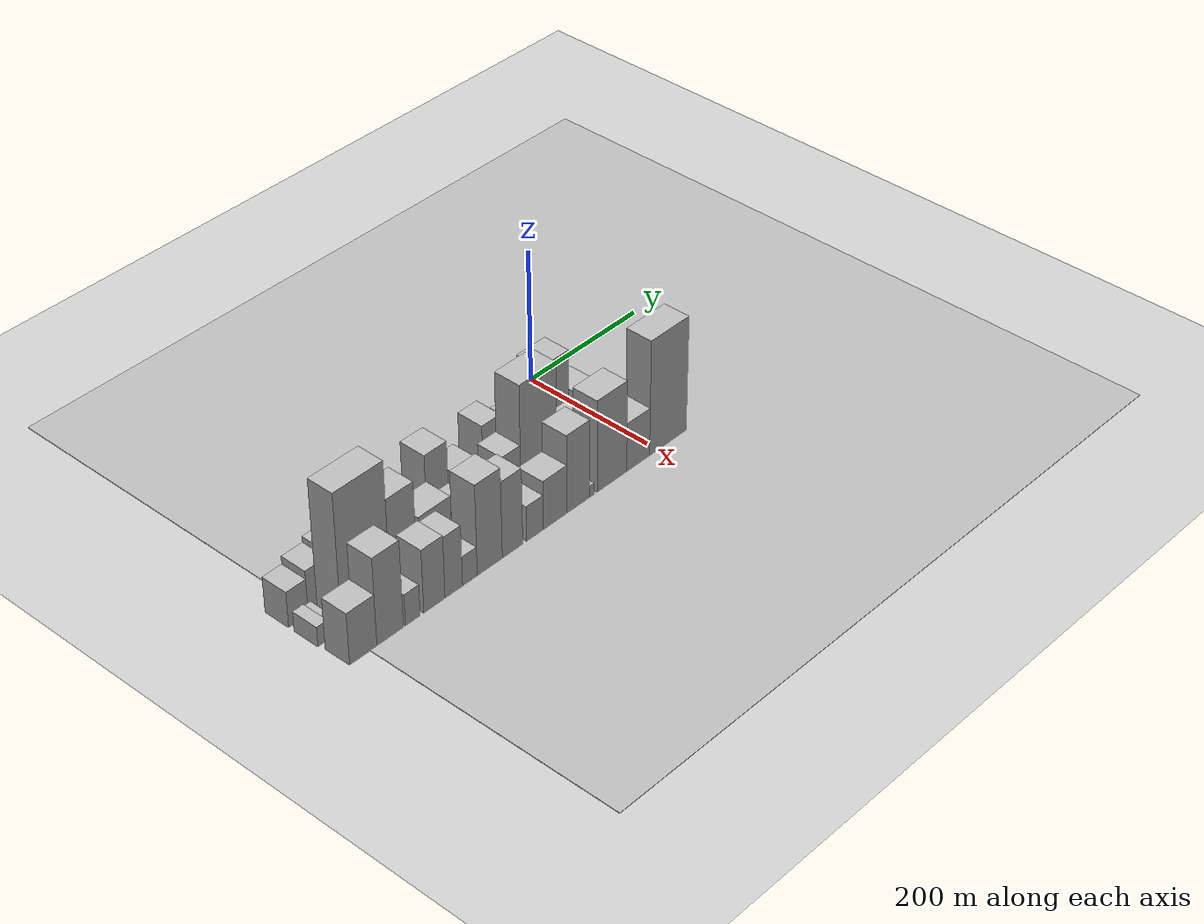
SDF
<sdf version="1.6">
 <world name="default">
  <include><name>ground_plane_1</name><uri>model://HANNAS_ground_plane</uri></include>
  <include>
   <name>ground_plane_2</name>
   <uri>model://HANNAS_ground_plane</uri>
   <pose>100 0 0  0 0 0</pose>
  </include>
  <model name="building_1">
   <static>1</static>
   <pose>100.0000 -520.5226 0 0.000000 0.000000 0.000000</pose>
   <link name="link">
    <pose>0 0 27.00 0 0 0</pose>
    <collision name="collision"><geometry><box><size>40.0000 30.9549 54.0000</size></box></geometry></collision>
    <visual name="visual">
     <cast_shadows>0</cast_shadows>
     <geometry><box><size>40.0000 30.9549 54.0000</size></box></geometry>
     <material>
      <script>
       <uri>model://HANNAS_wall/materials/scripts</uri>
       <uri>model://HANNAS_wall/materials/textures</uri>
       <name>vrc/HANNAS_wall</name>
      </script>
     </material>
    </visual>
   </link>
  </model>
  <model name="building_2">
   <static>1</static>
   <pose>100.0000 -488.2523 0 0.000000 0.000000 0.000000</pose>
   <link name="link">
    <pose>0 0 33.00 0 0 0</pose>
    <collision name="collision"><geometry><box><size>40.0000 33.5855 66.0000</size></box></geometry></collision>
    <visual name="visual">
     <cast_shadows>0</cast_shadows>
     <geometry><box><size>40.0000 33.5855 66.0000</size></box></geometry>
     <material>
      <script>
       <uri>model://HANNAS_wall/materials/scripts</uri>
       <uri>model://HANNAS_wall/materials/textures</uri>
       <name>vrc/HANNAS_wall</name>
      </script>
     </material>
    </visual>
   </link>
  </model>
  <model name="building_3">
   <static>1</static>
   <pose>100.0000 -452.0912 0 0.000000 0.000000 0.000000</pose>
   <link name="link">
    <pose>0 0 37.50 0 0 0</pose>
    <collision name="collision"><geometry><box><size>40.0000 38.7367 75.0000</size></box></geometry></collision>
    <visual name="visual">
     <cast_shadows>0</cast_shadows>
     <geometry><box><size>40.0000 38.7367 75.0000</size></box></geometry>
     <material>
      <script>
       <uri>model://HANNAS_wall/materials/scripts</uri>
       <uri>model://HANNAS_wall/materials/textures</uri>
       <name>vrc/HANNAS_wall</name>
      </script>
     </material>
    </visual>
   </link>
  </model>
  <model name="building_4">
   <static>1</static>
   <pose>100.0000 -427.2255 0 0.000000 0.000000 0.000000</pose>
   <link name="link">
    <pose>0 0 13.50 0 0 0</pose>
    <collision name="collision"><geometry><box><size>40.0000 10.9949 27.0000</size></box></geometry></collision>
    <visual name="visual">
     <cast_shadows>0</cast_shadows>
     <geometry><box><size>40.0000 10.9949 27.0000</size></box></geometry>
     <material>
      <script>
       <uri>model://HANNAS_wall/materials/scripts</uri>
       <uri>model://HANNAS_wall/materials/textures</uri>
       <name>vrc/HANNAS_wall</name>
      </script>
     </material>
    </visual>
   </link>
  </model>
  <model name="building_5">
   <static>1</static>
   <pose>100.0000 -400.7128 0 0.000000 0.000000 0.000000</pose>
   <link name="link">
    <pose>0 0 46.50 0 0 0</pose>
    <collision name="collision"><geometry><box><size>40.0000 30.0306 93.0000</size></box></geometry></collision>
    <visual name="visual">
     <cast_shadows>0</cast_shadows>
     <geometry><box><size>40.0000 30.0306 93.0000</size></box></geometry>
     <material>
      <script>
       <uri>model://HANNAS_wall/materials/scripts</uri>
       <uri>model://HANNAS_wall/materials/textures</uri>
       <name>vrc/HANNAS_wall</name>
      </script>
     </material>
    </visual>
   </link>
  </model>
  <model name="building_6">
   <static>1</static>
   <pose>100.0000 -370.0675 0 0.000000 0.000000 0.000000</pose>
   <link name="link">
    <pose>0 0 30.00 0 0 0</pose>
    <collision name="collision"><geometry><box><size>40.0000 31.2598 60.0000</size></box></geometry></collision>
    <visual name="visual">
     <cast_shadows>0</cast_shadows>
     <geometry><box><size>40.0000 31.2598 60.0000</size></box></geometry>
     <material>
      <script>
       <uri>model://HANNAS_wall/materials/scripts</uri>
       <uri>model://HANNAS_wall/materials/textures</uri>
       <name>vrc/HANNAS_wall</name>
      </script>
     </material>
    </visual>
   </link>
  </model>
  <model name="building_7">
   <static>1</static>
   <pose>100.0000 -340.5071 0 0.000000 0.000000 0.000000</pose>
   <link name="link">
    <pose>0 0 27.00 0 0 0</pose>
    <collision name="collision"><geometry><box><size>40.0000 27.8611 54.0000</size></box></geometry></collision>
    <visual name="visual">
     <cast_shadows>0</cast_shadows>
     <geometry><box><size>40.0000 27.8611 54.0000</size></box></geometry>
     <material>
      <script>
       <uri>model://HANNAS_wall/materials/scripts</uri>
       <uri>model://HANNAS_wall/materials/textures</uri>
       <name>vrc/HANNAS_wall</name>
      </script>
     </material>
    </visual>
   </link>
  </model>
  <model name="building_8">
   <static>1</static>
   <pose>100.0000 -321.2389 0 0.000000 0.000000 0.000000</pose>
   <link name="link">
    <pose>0 0 12.00 0 0 0</pose>
    <collision name="collision"><geometry><box><size>40.0000 10.6752 24.0000</size></box></geometry></collision>
    <visual name="visual">
     <cast_shadows>0</cast_shadows>
     <geometry><box><size>40.0000 10.6752 24.0000</size></box></geometry>
     <material>
      <script>
       <uri>model://HANNAS_wall/materials/scripts</uri>
       <uri>model://HANNAS_wall/materials/textures</uri>
       <name>vrc/HANNAS_wall</name>
      </script>
     </material>
    </visual>
   </link>
  </model>
  <model name="building_9">
   <static>1</static>
   <pose>100.0000 -312.6179 0 0.000000 0.000000 0.000000</pose>
   <link name="link">
    <pose>0 0 7.50 0 0 0</pose>
    <collision name="collision"><geometry><box><size>40.0000 6.5669 15.0000</size></box></geometry></collision>
    <visual name="visual">
     <cast_shadows>0</cast_shadows>
     <geometry><box><size>40.0000 6.5669 15.0000</size></box></geometry>
     <material>
      <script>
       <uri>model://HANNAS_wall/materials/scripts</uri>
       <uri>model://HANNAS_wall/materials/textures</uri>
       <name>vrc/HANNAS_wall</name>
      </script>
     </material>
    </visual>
   </link>
  </model>
  <model name="building_10">
   <static>1</static>
   <pose>100.0000 -290.5077 0 0.000000 0.000000 0.000000</pose>
   <link name="link">
    <pose>0 0 60.00 0 0 0</pose>
    <collision name="collision"><geometry><box><size>40.0000 37.6535 120.0000</size></box></geometry></collision>
    <visual name="visual">
     <cast_shadows>0</cast_shadows>
     <geometry><box><size>40.0000 37.6535 120.0000</size></box></geometry>
     <material>
      <script>
       <uri>model://HANNAS_wall/materials/scripts</uri>
       <uri>model://HANNAS_wall/materials/textures</uri>
       <name>vrc/HANNAS_wall</name>
      </script>
     </material>
    </visual>
   </link>
  </model>
  <model name="building_11">
   <static>1</static>
   <pose>100.0000 -241.9130 0 0.000000 0.000000 0.000000</pose>
   <link name="link">
    <pose>0 0 33.00 0 0 0</pose>
    <collision name="collision"><geometry><box><size>40.0000 39.5359 66.0000</size></box></geometry></collision>
    <visual name="visual">
     <cast_shadows>0</cast_shadows>
     <geometry><box><size>40.0000 39.5359 66.0000</size></box></geometry>
     <material>
      <script>
       <uri>model://HANNAS_wall/materials/scripts</uri>
       <uri>model://HANNAS_wall/materials/textures</uri>
       <name>vrc/HANNAS_wall</name>
      </script>
     </material>
    </visual>
   </link>
  </model>
  <model name="building_12">
   <static>1</static>
   <pose>100.0000 -195.8661 0 0.000000 0.000000 0.000000</pose>
   <link name="link">
    <pose>0 0 54.00 0 0 0</pose>
    <collision name="collision"><geometry><box><size>40.0000 32.5578 108.0000</size></box></geometry></collision>
    <visual name="visual">
     <cast_shadows>0</cast_shadows>
     <geometry><box><size>40.0000 32.5578 108.0000</size></box></geometry>
     <material>
      <script>
       <uri>model://HANNAS_wall/materials/scripts</uri>
       <uri>model://HANNAS_wall/materials/textures</uri>
       <name>vrc/HANNAS_wall</name>
      </script>
     </material>
    </visual>
   </link>
  </model>
  <model name="building_13">
   <static>1</static>
   <pose>100.0000 -170.6438 0 0.000000 0.000000 0.000000</pose>
   <link name="link">
    <pose>0 0 16.50 0 0 0</pose>
    <collision name="collision"><geometry><box><size>40.0000 17.8870 33.0000</size></box></geometry></collision>
    <visual name="visual">
     <cast_shadows>0</cast_shadows>
     <geometry><box><size>40.0000 17.8870 33.0000</size></box></geometry>
     <material>
      <script>
       <uri>model://HANNAS_wall/materials/scripts</uri>
       <uri>model://HANNAS_wall/materials/textures</uri>
       <name>vrc/HANNAS_wall</name>
      </script>
     </material>
    </visual>
   </link>
  </model>
  <model name="building_14">
   <static>1</static>
   <pose>100.0000 -132.5002 0 0.000000 0.000000 0.000000</pose>
   <link name="link">
    <pose>0 0 42.00 0 0 0</pose>
    <collision name="collision"><geometry><box><size>40.0000 48.4001 84.0000</size></box></geometry></collision>
    <visual name="visual">
     <cast_shadows>0</cast_shadows>
     <geometry><box><size>40.0000 48.4001 84.0000</size></box></geometry>
     <material>
      <script>
       <uri>model://HANNAS_wall/materials/scripts</uri>
       <uri>model://HANNAS_wall/materials/textures</uri>
       <name>vrc/HANNAS_wall</name>
      </script>
     </material>
    </visual>
   </link>
  </model>
  <model name="building_15">
   <static>1</static>
   <pose>100.0000 -83.1058 0 0.000000 0.000000 0.000000</pose>
   <link name="link">
    <pose>0 0 69.00 0 0 0</pose>
    <collision name="collision"><geometry><box><size>40.0000 50.3887 138.0000</size></box></geometry></collision>
    <visual name="visual">
     <cast_shadows>0</cast_shadows>
     <geometry><box><size>40.0000 50.3887 138.0000</size></box></geometry>
     <material>
      <script>
       <uri>model://HANNAS_wall/materials/scripts</uri>
       <uri>model://HANNAS_wall/materials/textures</uri>
       <name>vrc/HANNAS_wall</name>
      </script>
     </material>
    </visual>
   </link>
  </model>
  <model name="building_16">
   <static>1</static>
   <pose>100.0000 -30.5629 0 0.000000 0.000000 0.000000</pose>
   <link name="link">
    <pose>0 0 34.50 0 0 0</pose>
    <collision name="collision"><geometry><box><size>40.0000 36.6970 69.0000</size></box></geometry></collision>
    <visual name="visual">
     <cast_shadows>0</cast_shadows>
     <geometry><box><size>40.0000 36.6970 69.0000</size></box></geometry>
     <material>
      <script>
       <uri>model://HANNAS_wall/materials/scripts</uri>
       <uri>model://HANNAS_wall/materials/textures</uri>
       <name>vrc/HANNAS_wall</name>
      </script>
     </material>
    </visual>
   </link>
  </model>
  <model name="building_17">
   <static>1</static>
   <pose>100.0000 1.1108 0 0.000000 0.000000 0.000000</pose>
   <link name="link">
    <pose>0 0 7.50 0 0 0</pose>
    <collision name="collision"><geometry><box><size>40.0000 6.6503 15.0000</size></box></geometry></collision>
    <visual name="visual">
     <cast_shadows>0</cast_shadows>
     <geometry><box><size>40.0000 6.6503 15.0000</size></box></geometry>
     <material>
      <script>
       <uri>model://HANNAS_wall/materials/scripts</uri>
       <uri>model://HANNAS_wall/materials/textures</uri>
       <name>vrc/HANNAS_wall</name>
      </script>
     </material>
    </visual>
   </link>
  </model>
  <model name="building_33">
   <static>1</static>
   <pose>149.0000 -527.3636 0 0.000000 0.000000 0.000000</pose>
   <link name="link">
    <pose>0 0 15.00 0 0 0</pose>
    <collision name="collision"><geometry><box><size>40.0000 17.2728 30.0000</size></box></geometry></collision>
    <visual name="visual">
     <cast_shadows>0</cast_shadows>
     <geometry><box><size>40.0000 17.2728 30.0000</size></box></geometry>
     <material>
      <script>
       <uri>model://HANNAS_wall/materials/scripts</uri>
       <uri>model://HANNAS_wall/materials/textures</uri>
       <name>vrc/HANNAS_wall</name>
      </script>
     </material>
    </visual>
   </link>
  </model>
  <model name="building_34">
   <static>1</static>
   <pose>149.0000 -513.0328 0 0.000000 0.000000 0.000000</pose>
   <link name="link">
    <pose>0 0 13.50 0 0 0</pose>
    <collision name="collision"><geometry><box><size>40.0000 11.3889 27.0000</size></box></geometry></collision>
    <visual name="visual">
     <cast_shadows>0</cast_shadows>
     <geometry><box><size>40.0000 11.3889 27.0000</size></box></geometry>
     <material>
      <script>
       <uri>model://HANNAS_wall/materials/scripts</uri>
       <uri>model://HANNAS_wall/materials/textures</uri>
       <name>vrc/HANNAS_wall</name>
      </script>
     </material>
    </visual>
   </link>
  </model>
  <model name="building_35">
   <static>1</static>
   <pose>149.0000 -458.8959 0 0.000000 0.000000 0.000000</pose>
   <link name="link">
    <pose>0 0 102.00 0 0 0</pose>
    <collision name="collision"><geometry><box><size>40.0000 78.8850 204.0000</size></box></geometry></collision>
    <visual name="visual">
     <cast_shadows>0</cast_shadows>
     <geometry><box><size>40.0000 78.8850 204.0000</size></box></geometry>
     <material>
      <script>
       <uri>model://HANNAS_wall/materials/scripts</uri>
       <uri>model://HANNAS_wall/materials/textures</uri>
       <name>vrc/HANNAS_wall</name>
      </script>
     </material>
    </visual>
   </link>
  </model>
  <model name="building_36">
   <static>1</static>
   <pose>149.0000 -397.2426 0 0.000000 0.000000 0.000000</pose>
   <link name="link">
    <pose>0 0 73.50 0 0 0</pose>
    <collision name="collision"><geometry><box><size>40.0000 44.4216 147.0000</size></box></geometry></collision>
    <visual name="visual">
     <cast_shadows>0</cast_shadows>
     <geometry><box><size>40.0000 44.4216 147.0000</size></box></geometry>
     <material>
      <script>
       <uri>model://HANNAS_wall/materials/scripts</uri>
       <uri>model://HANNAS_wall/materials/textures</uri>
       <name>vrc/HANNAS_wall</name>
      </script>
     </material>
    </visual>
   </link>
  </model>
  <model name="building_37">
   <static>1</static>
   <pose>149.0000 -343.1438 0 0.000000 0.000000 0.000000</pose>
   <link name="link">
    <pose>0 0 45.00 0 0 0</pose>
    <collision name="collision"><geometry><box><size>40.0000 53.7761 90.0000</size></box></geometry></collision>
    <visual name="visual">
     <cast_shadows>0</cast_shadows>
     <geometry><box><size>40.0000 53.7761 90.0000</size></box></geometry>
     <material>
      <script>
       <uri>model://HANNAS_wall/materials/scripts</uri>
       <uri>model://HANNAS_wall/materials/textures</uri>
       <name>vrc/HANNAS_wall</name>
      </script>
     </material>
    </visual>
   </link>
  </model>
  <model name="building_38">
   <static>1</static>
   <pose>149.0000 -297.8388 0 0.000000 0.000000 0.000000</pose>
   <link name="link">
    <pose>0 0 33.00 0 0 0</pose>
    <collision name="collision"><geometry><box><size>40.0000 36.8337 66.0000</size></box></geometry></collision>
    <visual name="visual">
     <cast_shadows>0</cast_shadows>
     <geometry><box><size>40.0000 36.8337 66.0000</size></box></geometry>
     <material>
      <script>
       <uri>model://HANNAS_wall/materials/scripts</uri>
       <uri>model://HANNAS_wall/materials/textures</uri>
       <name>vrc/HANNAS_wall</name>
      </script>
     </material>
    </visual>
   </link>
  </model>
  <model name="building_39">
   <static>1</static>
   <pose>149.0000 -249.7670 0 0.000000 0.000000 0.000000</pose>
   <link name="link">
    <pose>0 0 34.50 0 0 0</pose>
    <collision name="collision"><geometry><box><size>40.0000 41.3099 69.0000</size></box></geometry></collision>
    <visual name="visual">
     <cast_shadows>0</cast_shadows>
     <geometry><box><size>40.0000 41.3099 69.0000</size></box></geometry>
     <material>
      <script>
       <uri>model://HANNAS_wall/materials/scripts</uri>
       <uri>model://HANNAS_wall/materials/textures</uri>
       <name>vrc/HANNAS_wall</name>
      </script>
     </material>
    </visual>
   </link>
  </model>
  <model name="building_40">
   <static>1</static>
   <pose>149.0000 -213.1885 0 0.000000 0.000000 0.000000</pose>
   <link name="link">
    <pose>0 0 48.00 0 0 0</pose>
    <collision name="collision"><geometry><box><size>40.0000 31.8470 96.0000</size></box></geometry></collision>
    <visual name="visual">
     <cast_shadows>0</cast_shadows>
     <geometry><box><size>40.0000 31.8470 96.0000</size></box></geometry>
     <material>
      <script>
       <uri>model://HANNAS_wall/materials/scripts</uri>
       <uri>model://HANNAS_wall/materials/textures</uri>
       <name>vrc/HANNAS_wall</name>
      </script>
     </material>
    </visual>
   </link>
  </model>
  <model name="building_41">
   <static>1</static>
   <pose>149.0000 -165.3046 0 0.000000 0.000000 0.000000</pose>
   <link name="link">
    <pose>0 0 93.00 0 0 0</pose>
    <collision name="collision"><geometry><box><size>40.0000 63.9208 186.0000</size></box></geometry></collision>
    <visual name="visual">
     <cast_shadows>0</cast_shadows>
     <geometry><box><size>40.0000 63.9208 186.0000</size></box></geometry>
     <material>
      <script>
       <uri>model://HANNAS_wall/materials/scripts</uri>
       <uri>model://HANNAS_wall/materials/textures</uri>
       <name>vrc/HANNAS_wall</name>
      </script>
     </material>
    </visual>
   </link>
  </model>
  <model name="building_42">
   <static>1</static>
   <pose>149.0000 -116.6130 0 0.000000 0.000000 0.000000</pose>
   <link name="link">
    <pose>0 0 30.00 0 0 0</pose>
    <collision name="collision"><geometry><box><size>40.0000 33.4624 60.0000</size></box></geometry></collision>
    <visual name="visual">
     <cast_shadows>0</cast_shadows>
     <geometry><box><size>40.0000 33.4624 60.0000</size></box></geometry>
     <material>
      <script>
       <uri>model://HANNAS_wall/materials/scripts</uri>
       <uri>model://HANNAS_wall/materials/textures</uri>
       <name>vrc/HANNAS_wall</name>
      </script>
     </material>
    </visual>
   </link>
  </model>
  <model name="building_43">
   <static>1</static>
   <pose>149.0000 -78.4307 0 0.000000 0.000000 0.000000</pose>
   <link name="link">
    <pose>0 0 36.00 0 0 0</pose>
    <collision name="collision"><geometry><box><size>40.0000 42.9023 72.0000</size></box></geometry></collision>
    <visual name="visual">
     <cast_shadows>0</cast_shadows>
     <geometry><box><size>40.0000 42.9023 72.0000</size></box></geometry>
     <material>
      <script>
       <uri>model://HANNAS_wall/materials/scripts</uri>
       <uri>model://HANNAS_wall/materials/textures</uri>
       <name>vrc/HANNAS_wall</name>
      </script>
     </material>
    </visual>
   </link>
  </model>
  <model name="building_44">
   <static>1</static>
   <pose>149.0000 -46.8385 0 0.000000 0.000000 0.000000</pose>
   <link name="link">
    <pose>0 0 18.00 0 0 0</pose>
    <collision name="collision"><geometry><box><size>40.0000 20.2821 36.0000</size></box></geometry></collision>
    <visual name="visual">
     <cast_shadows>0</cast_shadows>
     <geometry><box><size>40.0000 20.2821 36.0000</size></box></geometry>
     <material>
      <script>
       <uri>model://HANNAS_wall/materials/scripts</uri>
       <uri>model://HANNAS_wall/materials/textures</uri>
       <name>vrc/HANNAS_wall</name>
      </script>
     </material>
    </visual>
   </link>
  </model>
  <model name="building_45">
   <static>1</static>
   <pose>149.0000 -17.8517 0 0.000000 0.000000 0.000000</pose>
   <link name="link">
    <pose>0 0 37.50 0 0 0</pose>
    <collision name="collision"><geometry><box><size>40.0000 37.6915 75.0000</size></box></geometry></collision>
    <visual name="visual">
     <cast_shadows>0</cast_shadows>
     <geometry><box><size>40.0000 37.6915 75.0000</size></box></geometry>
     <material>
      <script>
       <uri>model://HANNAS_wall/materials/scripts</uri>
       <uri>model://HANNAS_wall/materials/textures</uri>
       <name>vrc/HANNAS_wall</name>
      </script>
     </material>
    </visual>
   </link>
  </model>
  <model name="building_61">
   <static>1</static>
   <pose>198.0000 -511.3610 0 0.000000 0.000000 0.000000</pose>
   <link name="link">
    <pose>0 0 39.00 0 0 0</pose>
    <collision name="collision"><geometry><box><size>40.0000 43.2779 78.0000</size></box></geometry></collision>
    <visual name="visual">
     <cast_shadows>0</cast_shadows>
     <geometry><box><size>40.0000 43.2779 78.0000</size></box></geometry>
     <material>
      <script>
       <uri>model://HANNAS_wall/materials/scripts</uri>
       <uri>model://HANNAS_wall/materials/textures</uri>
       <name>vrc/HANNAS_wall</name>
      </script>
     </material>
    </visual>
   </link>
  </model>
  <model name="building_62">
   <static>1</static>
   <pose>198.0000 -468.3047 0 0.000000 0.000000 0.000000</pose>
   <link name="link">
    <pose>0 0 66.00 0 0 0</pose>
    <collision name="collision"><geometry><box><size>40.0000 42.8347 132.0000</size></box></geometry></collision>
    <visual name="visual">
     <cast_shadows>0</cast_shadows>
     <geometry><box><size>40.0000 42.8347 132.0000</size></box></geometry>
     <material>
      <script>
       <uri>model://HANNAS_wall/materials/scripts</uri>
       <uri>model://HANNAS_wall/materials/textures</uri>
       <name>vrc/HANNAS_wall</name>
      </script>
     </material>
    </visual>
   </link>
  </model>
  <model name="building_63">
   <static>1</static>
   <pose>198.0000 -431.8566 0 0.000000 0.000000 0.000000</pose>
   <link name="link">
    <pose>0 0 24.00 0 0 0</pose>
    <collision name="collision"><geometry><box><size>40.0000 24.0615 48.0000</size></box></geometry></collision>
    <visual name="visual">
     <cast_shadows>0</cast_shadows>
     <geometry><box><size>40.0000 24.0615 48.0000</size></box></geometry>
     <material>
      <script>
       <uri>model://HANNAS_wall/materials/scripts</uri>
       <uri>model://HANNAS_wall/materials/textures</uri>
       <name>vrc/HANNAS_wall</name>
      </script>
     </material>
    </visual>
   </link>
  </model>
  <model name="building_64">
   <static>1</static>
   <pose>198.0000 -396.2676 0 0.000000 0.000000 0.000000</pose>
   <link name="link">
    <pose>0 0 48.00 0 0 0</pose>
    <collision name="collision"><geometry><box><size>40.0000 35.1165 96.0000</size></box></geometry></collision>
    <visual name="visual">
     <cast_shadows>0</cast_shadows>
     <geometry><box><size>40.0000 35.1165 96.0000</size></box></geometry>
     <material>
      <script>
       <uri>model://HANNAS_wall/materials/scripts</uri>
       <uri>model://HANNAS_wall/materials/textures</uri>
       <name>vrc/HANNAS_wall</name>
      </script>
     </material>
    </visual>
   </link>
  </model>
  <model name="building_65">
   <static>1</static>
   <pose>198.0000 -364.0146 0 0.000000 0.000000 0.000000</pose>
   <link name="link">
    <pose>0 0 46.50 0 0 0</pose>
    <collision name="collision"><geometry><box><size>40.0000 29.3894 93.0000</size></box></geometry></collision>
    <visual name="visual">
     <cast_shadows>0</cast_shadows>
     <geometry><box><size>40.0000 29.3894 93.0000</size></box></geometry>
     <material>
      <script>
       <uri>model://HANNAS_wall/materials/scripts</uri>
       <uri>model://HANNAS_wall/materials/textures</uri>
       <name>vrc/HANNAS_wall</name>
      </script>
     </material>
    </visual>
   </link>
  </model>
  <model name="building_66">
   <static>1</static>
   <pose>198.0000 -337.0058 0 0.000000 0.000000 0.000000</pose>
   <link name="link">
    <pose>0 0 22.50 0 0 0</pose>
    <collision name="collision"><geometry><box><size>40.0000 24.6281 45.0000</size></box></geometry></collision>
    <visual name="visual">
     <cast_shadows>0</cast_shadows>
     <geometry><box><size>40.0000 24.6281 45.0000</size></box></geometry>
     <material>
      <script>
       <uri>model://HANNAS_wall/materials/scripts</uri>
       <uri>model://HANNAS_wall/materials/textures</uri>
       <name>vrc/HANNAS_wall</name>
      </script>
     </material>
    </visual>
   </link>
  </model>
  <model name="building_67">
   <static>1</static>
   <pose>198.0000 -303.2757 0 0.000000 0.000000 0.000000</pose>
   <link name="link">
    <pose>0 0 69.00 0 0 0</pose>
    <collision name="collision"><geometry><box><size>40.0000 42.8323 138.0000</size></box></geometry></collision>
    <visual name="visual">
     <cast_shadows>0</cast_shadows>
     <geometry><box><size>40.0000 42.8323 138.0000</size></box></geometry>
     <material>
      <script>
       <uri>model://HANNAS_wall/materials/scripts</uri>
       <uri>model://HANNAS_wall/materials/textures</uri>
       <name>vrc/HANNAS_wall</name>
      </script>
     </material>
    </visual>
   </link>
  </model>
  <model name="building_68">
   <static>1</static>
   <pose>198.0000 -264.2384 0 0.000000 0.000000 0.000000</pose>
   <link name="link">
    <pose>0 0 58.50 0 0 0</pose>
    <collision name="collision"><geometry><box><size>40.0000 35.2424 117.0000</size></box></geometry></collision>
    <visual name="visual">
     <cast_shadows>0</cast_shadows>
     <geometry><box><size>40.0000 35.2424 117.0000</size></box></geometry>
     <material>
      <script>
       <uri>model://HANNAS_wall/materials/scripts</uri>
       <uri>model://HANNAS_wall/materials/textures</uri>
       <name>vrc/HANNAS_wall</name>
      </script>
     </material>
    </visual>
   </link>
  </model>
  <model name="building_69">
   <static>1</static>
   <pose>198.0000 -225.0719 0 0.000000 0.000000 0.000000</pose>
   <link name="link">
    <pose>0 0 27.00 0 0 0</pose>
    <collision name="collision"><geometry><box><size>40.0000 29.0906 54.0000</size></box></geometry></collision>
    <visual name="visual">
     <cast_shadows>0</cast_shadows>
     <geometry><box><size>40.0000 29.0906 54.0000</size></box></geometry>
     <material>
      <script>
       <uri>model://HANNAS_wall/materials/scripts</uri>
       <uri>model://HANNAS_wall/materials/textures</uri>
       <name>vrc/HANNAS_wall</name>
      </script>
     </material>
    </visual>
   </link>
  </model>
  <model name="building_70">
   <static>1</static>
   <pose>198.0000 -189.5818 0 0.000000 0.000000 0.000000</pose>
   <link name="link">
    <pose>0 0 37.50 0 0 0</pose>
    <collision name="collision"><geometry><box><size>40.0000 41.8895 75.0000</size></box></geometry></collision>
    <visual name="visual">
     <cast_shadows>0</cast_shadows>
     <geometry><box><size>40.0000 41.8895 75.0000</size></box></geometry>
     <material>
      <script>
       <uri>model://HANNAS_wall/materials/scripts</uri>
       <uri>model://HANNAS_wall/materials/textures</uri>
       <name>vrc/HANNAS_wall</name>
      </script>
     </material>
    </visual>
   </link>
  </model>
  <model name="building_71">
   <static>1</static>
   <pose>198.0000 -147.9587 0 0.000000 0.000000 0.000000</pose>
   <link name="link">
    <pose>0 0 60.00 0 0 0</pose>
    <collision name="collision"><geometry><box><size>40.0000 41.3566 120.0000</size></box></geometry></collision>
    <visual name="visual">
     <cast_shadows>0</cast_shadows>
     <geometry><box><size>40.0000 41.3566 120.0000</size></box></geometry>
     <material>
      <script>
       <uri>model://HANNAS_wall/materials/scripts</uri>
       <uri>model://HANNAS_wall/materials/textures</uri>
       <name>vrc/HANNAS_wall</name>
      </script>
     </material>
    </visual>
   </link>
  </model>
  <model name="building_72">
   <static>1</static>
   <pose>198.0000 -123.0814 0 0.000000 0.000000 0.000000</pose>
   <link name="link">
    <pose>0 0 9.00 0 0 0</pose>
    <collision name="collision"><geometry><box><size>40.0000 8.3980 18.0000</size></box></geometry></collision>
    <visual name="visual">
     <cast_shadows>0</cast_shadows>
     <geometry><box><size>40.0000 8.3980 18.0000</size></box></geometry>
     <material>
      <script>
       <uri>model://HANNAS_wall/materials/scripts</uri>
       <uri>model://HANNAS_wall/materials/textures</uri>
       <name>vrc/HANNAS_wall</name>
      </script>
     </material>
    </visual>
   </link>
  </model>
  <model name="building_73">
   <static>1</static>
   <pose>198.0000 -86.6538 0 0.000000 0.000000 0.000000</pose>
   <link name="link">
    <pose>0 0 70.50 0 0 0</pose>
    <collision name="collision"><geometry><box><size>40.0000 54.4571 141.0000</size></box></geometry></collision>
    <visual name="visual">
     <cast_shadows>0</cast_shadows>
     <geometry><box><size>40.0000 54.4571 141.0000</size></box></geometry>
     <material>
      <script>
       <uri>model://HANNAS_wall/materials/scripts</uri>
       <uri>model://HANNAS_wall/materials/textures</uri>
       <name>vrc/HANNAS_wall</name>
      </script>
     </material>
    </visual>
   </link>
  </model>
  <model name="building_74">
   <static>1</static>
   <pose>198.0000 -38.0550 0 0.000000 0.000000 0.000000</pose>
   <link name="link">
    <pose>0 0 37.50 0 0 0</pose>
    <collision name="collision"><geometry><box><size>40.0000 42.7404 75.0000</size></box></geometry></collision>
    <visual name="visual">
     <cast_shadows>0</cast_shadows>
     <geometry><box><size>40.0000 42.7404 75.0000</size></box></geometry>
     <material>
      <script>
       <uri>model://HANNAS_wall/materials/scripts</uri>
       <uri>model://HANNAS_wall/materials/textures</uri>
       <name>vrc/HANNAS_wall</name>
      </script>
     </material>
    </visual>
   </link>
  </model>
  <model name="building_75">
   <static>1</static>
   <pose>198.0000 18.2504 0 0.000000 0.000000 0.000000</pose>
   <link name="link">
    <pose>0 0 88.50 0 0 0</pose>
    <collision name="collision"><geometry><box><size>40.0000 69.8704 177.0000</size></box></geometry></collision>
    <visual name="visual">
     <cast_shadows>0</cast_shadows>
     <geometry><box><size>40.0000 69.8704 177.0000</size></box></geometry>
     <material>
      <script>
       <uri>model://HANNAS_wall/materials/scripts</uri>
       <uri>model://HANNAS_wall/materials/textures</uri>
       <name>vrc/HANNAS_wall</name>
      </script>
     </material>
    </visual>
   </link>
  </model>
 </world>
</sdf>
